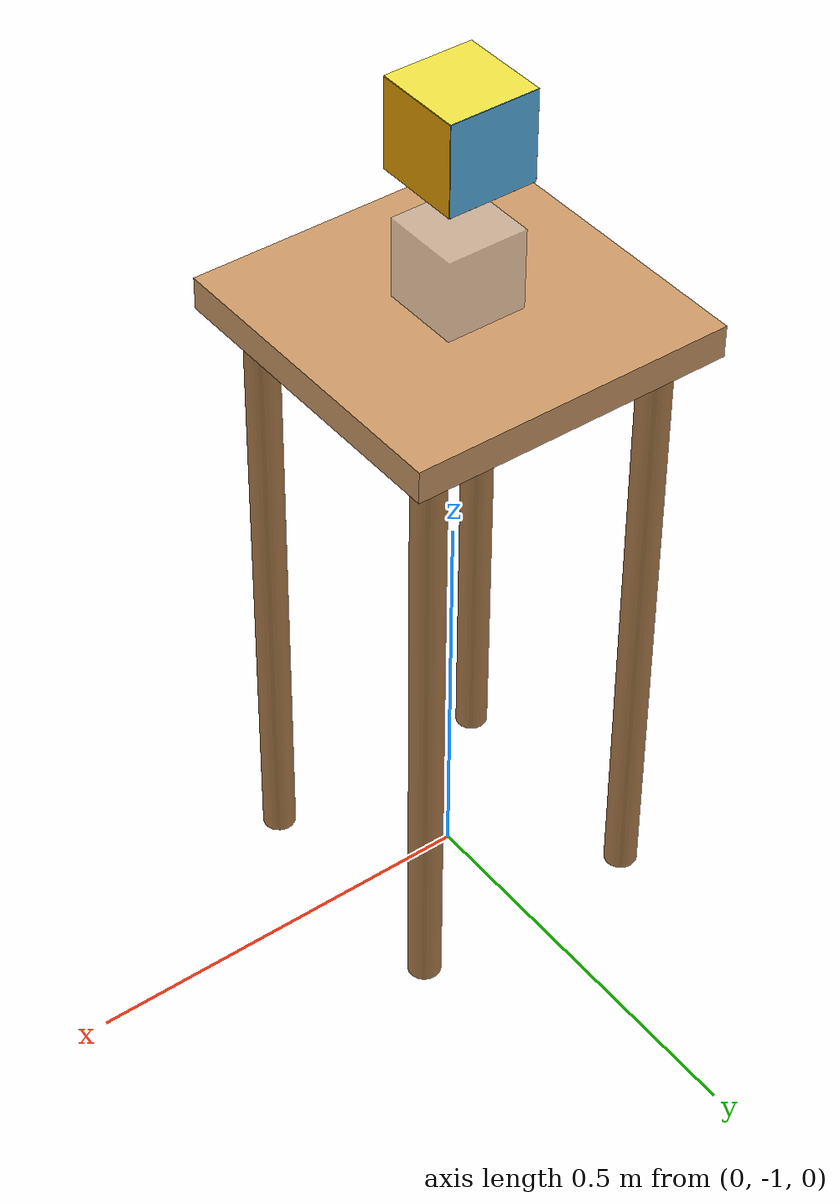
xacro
<?xml version="1.0"?>
<robot xmlns:xacro="http://ros.org/wiki/xacro" name="standalone_apriltag_cube">

  <!-- 定义参数 -->
  <xacro:property name="table_height" value="0.8" />  <!-- 桌子高度参数 -->
  <xacro:property name="table_thickness" value="0.04" />  <!-- 桌面厚度 -->
  <xacro:property name="leg_radius" value="0.02" />  <!-- 桌腿半径 -->

  <!-- 桌子位置参数 / 参数相对于世界来说 -->
  <xacro:property name="table_x" value="0.0" />  <!-- 桌子x坐标 -->
  <xacro:property name="table_y" value="-1.0" />  <!-- 桌子y坐标 -->
  <xacro:property name="table_z" value="${table_height}" />  <!-- 桌子z坐标 -->
  <xacro:property name="table_roll" value="0.0" />  <!-- 桌子roll角度 -->
  <xacro:property name="table_pitch" value="0.0" />  <!-- 桌子pitch角度 -->
  <xacro:property name="table_yaw" value="0.0" />  <!-- 桌子yaw角度 -->

  <!-- 立方体位置参数/参数相对于桌子来说 -->
  <xacro:property name="cube_x" value="0.0" />  <!-- 立方体x坐标 -->
  <xacro:property name="cube_y" value="0.0" />  <!-- 立方体y坐标 -->
  <xacro:property name="cube_z" value="${table_thickness/2 + 0.05}" />  <!-- 立方体z坐标 -->
  <xacro:property name="cube_roll" value="0.0" />  <!-- 立方体roll角度 -->
  <xacro:property name="cube_pitch" value="3.14159" />  <!-- 立方体pitch角度 -->
  <xacro:property name="cube_yaw" value="0.0" />  <!-- 立方体yaw角度 -->

  <!-- 引入apriltag -->
  <xacro:include filename="$(find kuavo_assets)/models/apriltag/urdf/apriltag.xacro"/>

  <!-- 添加一个世界链接作为根链接 -->
  <link name="world"/>

  <!-- 创建一个桌子链接 -->
  <link name="table_link">
    <visual>
      <geometry>
        <box size="0.4 0.4 ${table_thickness}"/>
      </geometry>
      <material name="wood">
        <color rgba="0.8 0.6 0.4 1.0"/>
      </material>
    </visual>
    <collision>
      <geometry>
        <box size="0.4 0.4 ${table_thickness}"/>
      </geometry>
    </collision>
    <inertial>
      <mass value="5.0"/>
      <inertia ixx="0.1" ixy="0" ixz="0" iyy="0.1" iyz="0" izz="0.1"/>
    </inertial>
  </link>

  <!-- 将世界链接与桌子连接 -->
  <joint name="world_to_table_joint" type="fixed">
    <parent link="world"/>
    <child link="table_link"/>
    <origin xyz="${table_x} ${table_y} ${table_z}" rpy="${table_roll} ${table_pitch} ${table_yaw}"/>
  </joint>

  <!-- 创建四条桌腿 -->
  <link name="table_leg1">
    <visual>
      <geometry>
        <cylinder radius="${leg_radius}" length="${table_height}"/>
      </geometry>
      <material name="wood">
        <color rgba="0.7 0.5 0.3 1.0"/>
      </material>
    </visual>
    <collision>
      <geometry>
        <cylinder radius="${leg_radius}" length="${table_height}"/>
      </geometry>
    </collision>
    <inertial>
      <mass value="0.5"/>
      <inertia ixx="0.01" ixy="0" ixz="0" iyy="0.01" iyz="0" izz="0.001"/>
    </inertial>
  </link>

  <link name="table_leg2">
    <visual>
      <geometry>
        <cylinder radius="${leg_radius}" length="${table_height}"/>
      </geometry>
      <material name="wood">
        <color rgba="0.7 0.5 0.3 1.0"/>
      </material>
    </visual>
    <collision>
      <geometry>
        <cylinder radius="${leg_radius}" length="${table_height}"/>
      </geometry>
    </collision>
    <inertial>
      <mass value="0.5"/>
      <inertia ixx="0.01" ixy="0" ixz="0" iyy="0.01" iyz="0" izz="0.001"/>
    </inertial>
  </link>

  <link name="table_leg3">
    <visual>
      <geometry>
        <cylinder radius="${leg_radius}" length="${table_height}"/>
      </geometry>
      <material name="wood">
        <color rgba="0.7 0.5 0.3 1.0"/>
      </material>
    </visual>
    <collision>
      <geometry>
        <cylinder radius="${leg_radius}" length="${table_height}"/>
      </geometry>
    </collision>
    <inertial>
      <mass value="0.5"/>
      <inertia ixx="0.01" ixy="0" ixz="0" iyy="0.01" iyz="0" izz="0.001"/>
    </inertial>
  </link>

  <link name="table_leg4">
    <visual>
      <geometry>
        <cylinder radius="${leg_radius}" length="${table_height}"/>
      </geometry>
      <material name="wood">
        <color rgba="0.7 0.5 0.3 1.0"/>
      </material>
    </visual>
    <collision>
      <geometry>
        <cylinder radius="${leg_radius}" length="${table_height}"/>
      </geometry>
    </collision>
    <inertial>
      <mass value="0.5"/>
      <inertia ixx="0.01" ixy="0" ixz="0" iyy="0.01" iyz="0" izz="0.001"/>
    </inertial>
  </link>

  <!-- 连接桌腿到桌面 -->
  <joint name="table_to_leg1_joint" type="fixed">
    <parent link="table_link"/>
    <child link="table_leg1"/>
    <origin xyz="0.15 0.15 ${-table_height/2}" rpy="0 0 0"/>
  </joint>

  <joint name="table_to_leg2_joint" type="fixed">
    <parent link="table_link"/>
    <child link="table_leg2"/>
    <origin xyz="-0.15 0.15 ${-table_height/2}" rpy="0 0 0"/>
  </joint>

  <joint name="table_to_leg3_joint" type="fixed">
    <parent link="table_link"/>
    <child link="table_leg3"/>
    <origin xyz="0.15 -0.15 ${-table_height/2}" rpy="0 0 0"/>
  </joint>

  <joint name="table_to_leg4_joint" type="fixed">
    <parent link="table_link"/>
    <child link="table_leg4"/>
    <origin xyz="-0.15 -0.15 ${-table_height/2}" rpy="0 0 0"/>
  </joint>

  <!-- 创建一个基础链接作为立方体的中心 -->
  <link name="apriltag_cube_base">
    <visual>
      <geometry>
        <box size="0.1 0.1 0.1"/>
      </geometry>
      <material>
        <color rgba="0.8 0.8 0.8 0.5"/>
      </material>
    </visual>
    <collision>
      <geometry>
        <box size="0.1 0.1 0.1"/>
      </geometry>
    </collision>
    <inertial>
      <mass value="0.1"/>
      <inertia ixx="0.0001" ixy="0" ixz="0" iyy="0.0001" iyz="0" izz="0.0001"/>
    </inertial>
  </link>

  <!-- 将立方体固定在桌子上 -->
  <joint name="table_to_cube_joint" type="fixed">
    <parent link="table_link"/>
    <child link="apriltag_cube_base"/>
    <origin xyz="${cube_x} ${cube_y} ${cube_z}" rpy="${cube_roll} ${cube_pitch} ${cube_yaw}"/>
  </joint>

  <xacro:include filename="$(find kuavo_assets)/models/apriltag/urdf/apriltag_cube.xacro"/>
  <xacro:left_arm_apriltags parent_link="apriltag_cube_base"/>
  <!-- 确保您已为这些ID创建了相应的材质文件，放在 kuavo_assets/models/apriltag/materials/ 目录下 -->
</robot>

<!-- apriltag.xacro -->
<robot xmlns:xacro="http://ros.org/wiki/xacro" name="apriltag_marker">

  <xacro:macro name="apriltag_marker" params="parent_link *origin id">
    <!-- 定义二维码的Link -->
    <link name="apriltag_marker_${id}">
      <visual>
        <origin xyz="0 0 0" rpy="0 0 0"/>
        <geometry>
          <box size="0.11 0.11 0.001"/>
        </geometry>
      </visual>
      <collision>
        <geometry>
          <box size="0.11 0.11 0.001"/>
        </geometry>
      </collision>
    </link>

    <joint name="apriltag_joint_${id}" type="fixed">
      <xacro:insert_block name="origin" />
      <parent link="${parent_link}"/>
      <child link="apriltag_marker_${id}"/>
    </joint>

    <gazebo reference="apriltag_marker_${id}">
      <visual>
        <material>
          <script>
            <uri>file://$(find kuavo_assets)/models/apriltag/materials/apriltag_${id}.material</uri>
            <name>AprilTag/Marker${id}</name>
          </script>
          <shader type="pixel">
            <normal_map>__default__</normal_map>
          </shader>
          <double_sided>false</double_sided>
        </material>
      </visual>
    </gazebo>
  </xacro:macro>
</robot>

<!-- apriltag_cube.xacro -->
<robot xmlns:xacro="http://ros.org/wiki/xacro">

  <!-- 引入apriltag -->
  <xacro:include filename="$(find kuavo_assets)/models/apriltag/urdf/apriltag.xacro"/>

  <!-- 左臂AprilTag标记 -->
  <xacro:macro name="left_arm_apriltags" params="parent_link">
    <xacro:apriltag_marker parent_link="${parent_link}" id="0">
      <origin xyz="0.055 0 -0.165" rpy="0 1.5708 0"/>
    </xacro:apriltag_marker>
    <xacro:apriltag_marker parent_link="${parent_link}" id="1">
      <origin xyz="-0.055 0 -0.165" rpy="0 1.5708 3.1415"/>
    </xacro:apriltag_marker>
    <xacro:apriltag_marker parent_link="${parent_link}" id="2">
      <origin xyz="0 0.055 -0.165" rpy="0 1.5708 1.5708"/>
    </xacro:apriltag_marker>
    <xacro:apriltag_marker parent_link="${parent_link}" id="3">
      <origin xyz="0 -0.055 -0.165" rpy="0 1.5708 -1.5708"/>
    </xacro:apriltag_marker>
    <xacro:apriltag_marker parent_link="${parent_link}" id="4">
      <origin xyz="0 0 -0.22" rpy="0 3.1416 0"/>
    </xacro:apriltag_marker>
    <xacro:apriltag_marker parent_link="${parent_link}" id="111">
      <origin xyz="0 0 -0.11" rpy="0 3.1416 0"/>
    </xacro:apriltag_marker>
  </xacro:macro>

  <!-- 右臂AprilTag标记 -->
  <xacro:macro name="right_arm_apriltags" params="parent_link">
    <xacro:apriltag_marker parent_link="${parent_link}" id="5">
      <origin xyz="0.055 0 -0.165" rpy="0 1.5708 0"/>
    </xacro:apriltag_marker>
    <xacro:apriltag_marker parent_link="${parent_link}" id="6">
      <origin xyz="-0.055 0 -0.165" rpy="0 1.5708 3.1415"/>
    </xacro:apriltag_marker>
    <xacro:apriltag_marker parent_link="${parent_link}" id="7">
      <origin xyz="0 0.055 -0.165" rpy="0 1.5708 1.5708"/>
    </xacro:apriltag_marker>
    <xacro:apriltag_marker parent_link="${parent_link}" id="8">
      <origin xyz="0 -0.055 -0.165" rpy="0 1.5708 -1.5708"/>
    </xacro:apriltag_marker>
    <xacro:apriltag_marker parent_link="${parent_link}" id="9">
      <origin xyz="0 0 -0.22" rpy="0 3.1416 0"/>
    </xacro:apriltag_marker>
    <xacro:apriltag_marker parent_link="${parent_link}" id="999">
      <origin xyz="0 0 -0.11" rpy="0 3.1416 0"/>
    </xacro:apriltag_marker>
  </xacro:macro>

</robot>
